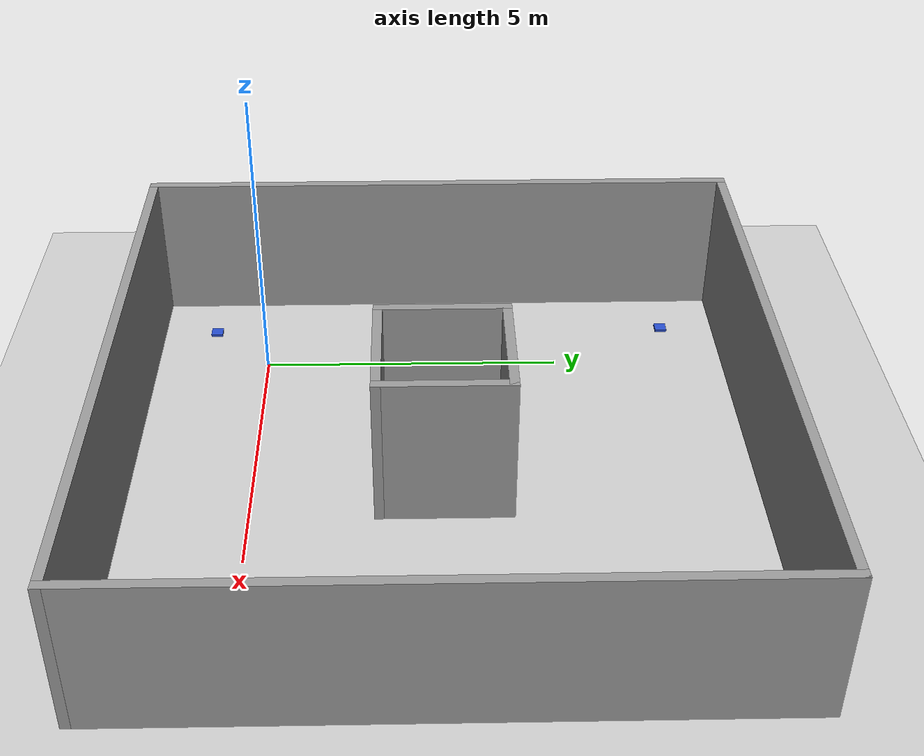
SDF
<sdf version="1.6">
 <world name="default">
  <light name="sun" type="directional">
   <pose>0 0 10 0 -0 0</pose>
   <diffuse>0.8 0.8 0.8 1</diffuse>
   <specular>0.2 0.2 0.2 1</specular>
   <attenuation>
    <range>1000</range>
    <constant>0.9</constant>
    <linear>0.01</linear>
    <quadratic>0.001</quadratic>
   </attenuation>
   <direction>-0.5 0.1 -0.9</direction>
  </light>
  <model name="ground_plane">
   <static>1</static>
   <link name="link">
    <collision name="collision">
     <geometry><plane><normal>0 0 1</normal><size>100 100</size></plane></geometry>
     <surface>
      <contact><collide_bitmask>65535</collide_bitmask></contact>
      <friction><ode><mu>100</mu><mu2>50</mu2></ode></friction>
     </surface>
    </collision>
    <visual name="visual">
     <cast_shadows>0</cast_shadows>
     <geometry><plane><normal>0 0 1</normal><size>100 100</size></plane></geometry>
     <material>
      <script><uri>file://media/materials/scripts/gazebo.material</uri><name>Gazebo/Grey</name></script>
     </material>
    </visual>
   </link>
  </model>
  <gravity>0 0 -9.8</gravity>
  <magnetic_field>6e-06 2.3e-05 -4.2e-05</magnetic_field>
  <atmosphere type="adiabatic"/>
  <scene><ambient>0.4 0.4 0.4 1</ambient><background>0.7 0.7 0.7 1</background><shadows>1</shadows></scene>
  <spherical_coordinates>
   <surface_model>EARTH_WGS84</surface_model>
   <latitude_deg>0</latitude_deg>
   <longitude_deg>0</longitude_deg>
   <elevation>0</elevation>
   <heading_deg>0</heading_deg>
  </spherical_coordinates>
  <physics name="default_physics" default="0" type="ode">
   <ode>
    <solver>
     <type>quick</type>
     <iters>20</iters>
     <sor>1.3</sor>
     <use_dynamic_moi_rescaling>0</use_dynamic_moi_rescaling>
    </solver>
    <constraints>
     <cfm>0</cfm>
     <erp>0.2</erp>
     <contact_max_correcting_vel>100</contact_max_correcting_vel>
     <contact_surface_layer>0.001</contact_surface_layer>
    </constraints>
   </ode>
   <max_step_size>0.002</max_step_size>
   <real_time_factor>1</real_time_factor>
   <real_time_update_rate>500</real_time_update_rate>
  </physics>
  <audio><device>default</device></audio>
  <model name="router">
   <pose>-1 7 0 0 -0 0</pose>
   <link name="router">
    <collision name="router_Collision">
     <geometry><box><size>0.2 0.2 0.05</size></box></geometry>
     <pose>0 0 0.025 0 -0 0</pose>
    </collision>
    <visual name="router_Visual">
     <pose>0 0 0.025 0 -0 0</pose>
     <geometry><box><size>0.2 0.2 0.05</size></box></geometry>
     <material>
      <script><uri>file://media/materials/scripts/gazebo.material</uri><name>Gazebo/Blue</name></script>
      <ambient>1 1 1 1</ambient>
     </material>
     <meta><layer>0</layer></meta>
    </visual>
   </link>
   <plugin name="router" filename="librouter.so">
    <topicName>router</topicName>
    <updateRate>10.0</updateRate>
    <range>18</range>
   </plugin>
   <static>1</static>
  </model>
  <model name="router_0">
   <pose>-1 -1 0 0 -0 0</pose>
   <link name="router">
    <collision name="router_Collision">
     <geometry><box><size>0.2 0.2 0.05</size></box></geometry>
     <pose>0 0 0.025 0 -0 0</pose>
    </collision>
    <visual name="router_Visual">
     <pose>0 0 0.025 0 -0 0</pose>
     <geometry><box><size>0.2 0.2 0.05</size></box></geometry>
     <material>
      <script><uri>file://media/materials/scripts/gazebo.material</uri><name>Gazebo/Blue</name></script>
      <ambient>1 1 1 1</ambient>
     </material>
     <meta><layer>0</layer></meta>
    </visual>
   </link>
   <plugin name="router" filename="librouter.so">
    <topicName>router</topicName>
    <updateRate>10.0</updateRate>
    <range>18</range>
   </plugin>
   <static>1</static>
  </model>
  <model name="router_1">
   <pose>7 -1 0 0 -0 0</pose>
   <link name="router">
    <collision name="router_Collision">
     <geometry><box><size>0.2 0.2 0.05</size></box></geometry>
     <pose>0 0 0.025 0 -0 0</pose>
    </collision>
    <visual name="router_Visual">
     <pose>0 0 0.025 0 -0 0</pose>
     <geometry><box><size>0.2 0.2 0.05</size></box></geometry>
     <material>
      <script><uri>file://media/materials/scripts/gazebo.material</uri><name>Gazebo/Blue</name></script>
      <ambient>1 1 1 1</ambient>
     </material>
     <meta><layer>0</layer></meta>
    </visual>
   </link>
   <plugin name="router" filename="librouter.so">
    <topicName>router</topicName>
    <updateRate>10.0</updateRate>
    <range>18</range>
   </plugin>
   <static>1</static>
  </model>
  <model name="router_2">
   <pose>7 7 0 0 -0 0</pose>
   <link name="router">
    <collision name="router_Collision">
     <geometry><box><size>0.2 0.2 0.05</size></box></geometry>
     <pose>0 0 0.025 0 -0 0</pose>
    </collision>
    <visual name="router_Visual">
     <pose>0 0 0.025 0 -0 0</pose>
     <geometry><box><size>0.2 0.2 0.05</size></box></geometry>
     <material>
      <script><uri>file://media/materials/scripts/gazebo.material</uri><name>Gazebo/Blue</name></script>
      <ambient>1 1 1 1</ambient>
     </material>
     <meta><layer>0</layer></meta>
    </visual>
   </link>
   <plugin name="router" filename="librouter.so">
    <topicName>router</topicName>
    <updateRate>10.0</updateRate>
    <range>18</range>
   </plugin>
   <static>1</static>
  </model>
  <model name="simple">
   <pose>3 3 0 0 -0 0</pose>
   <link name="Wall_10">
    <collision name="Wall_10_Collision">
     <geometry><box><size>2.15 0.15 2.5</size></box></geometry>
     <pose>0 0 1.25 0 -0 0</pose>
    </collision>
    <visual name="Wall_10_Visual">
     <pose>0 0 1.25 0 -0 0</pose>
     <geometry><box><size>2.15 0.15 2.5</size></box></geometry>
     <material>
      <script><uri>file://media/materials/scripts/gazebo.material</uri><name>Gazebo/Grey</name></script>
      <ambient>1 1 1 1</ambient>
     </material>
     <meta><layer>0</layer></meta>
    </visual>
    <pose>-1 -0 0 0 -0 1.5708</pose>
   </link>
   <link name="Wall_11">
    <collision name="Wall_11_Collision">
     <geometry><box><size>2.15 0.15 2.5</size></box></geometry>
     <pose>0 0 1.25 0 -0 0</pose>
    </collision>
    <visual name="Wall_11_Visual">
     <pose>0 0 1.25 0 -0 0</pose>
     <geometry><box><size>2.15 0.15 2.5</size></box></geometry>
     <material>
      <script><uri>file://media/materials/scripts/gazebo.material</uri><name>Gazebo/Grey</name></script>
      <ambient>1 1 1 1</ambient>
     </material>
     <meta><layer>0</layer></meta>
    </visual>
    <pose>-0 1 0 0 -0 0</pose>
   </link>
   <link name="Wall_12">
    <collision name="Wall_12_Collision">
     <geometry><box><size>2.15 0.15 2.5</size></box></geometry>
     <pose>0 0 1.25 0 -0 0</pose>
    </collision>
    <visual name="Wall_12_Visual">
     <pose>0 0 1.25 0 -0 0</pose>
     <geometry><box><size>2.15 0.15 2.5</size></box></geometry>
     <material>
      <script><uri>file://media/materials/scripts/gazebo.material</uri><name>Gazebo/Grey</name></script>
      <ambient>1 1 1 1</ambient>
     </material>
     <meta><layer>0</layer></meta>
    </visual>
    <pose>1 -0 0 0 -0 -1.5708</pose>
   </link>
   <link name="Wall_13">
    <collision name="Wall_13_Collision">
     <geometry><box><size>2.15 0.15 2.5</size></box></geometry>
     <pose>0 0 1.25 0 -0 0</pose>
    </collision>
    <visual name="Wall_13_Visual">
     <pose>0 0 1.25 0 -0 0</pose>
     <geometry><box><size>2.15 0.15 2.5</size></box></geometry>
     <material>
      <script><uri>file://media/materials/scripts/gazebo.material</uri><name>Gazebo/Grey</name></script>
      <ambient>1 1 1 1</ambient>
     </material>
     <meta><layer>0</layer></meta>
    </visual>
    <pose>-0 -1 0 0 -0 3.14159</pose>
   </link>
   <link name="Wall_5">
    <collision name="Wall_5_Collision">
     <geometry><box><size>10.15 0.15 2.5</size></box></geometry>
     <pose>0 0 1.25 0 -0 0</pose>
    </collision>
    <visual name="Wall_5_Visual">
     <pose>0 0 1.25 0 -0 0</pose>
     <geometry><box><size>10.15 0.15 2.5</size></box></geometry>
     <material>
      <script><uri>file://media/materials/scripts/gazebo.material</uri><name>Gazebo/Grey</name></script>
      <ambient>1 1 1 1</ambient>
     </material>
     <meta><layer>0</layer></meta>
    </visual>
    <pose>-5 -0 0 0 -0 1.5708</pose>
   </link>
   <link name="Wall_6">
    <collision name="Wall_6_Collision">
     <geometry><box><size>10.15 0.15 2.5</size></box></geometry>
     <pose>0 0 1.25 0 -0 0</pose>
    </collision>
    <visual name="Wall_6_Visual">
     <pose>0 0 1.25 0 -0 0</pose>
     <geometry><box><size>10.15 0.15 2.5</size></box></geometry>
     <material>
      <script><uri>file://media/materials/scripts/gazebo.material</uri><name>Gazebo/Grey</name></script>
      <ambient>1 1 1 1</ambient>
     </material>
     <meta><layer>0</layer></meta>
    </visual>
    <pose>-0 5 0 0 -0 0</pose>
   </link>
   <link name="Wall_7">
    <collision name="Wall_7_Collision">
     <geometry><box><size>10.15 0.15 2.5</size></box></geometry>
     <pose>0 0 1.25 0 -0 0</pose>
    </collision>
    <visual name="Wall_7_Visual">
     <pose>0 0 1.25 0 -0 0</pose>
     <geometry><box><size>10.15 0.15 2.5</size></box></geometry>
     <material>
      <script><uri>file://media/materials/scripts/gazebo.material</uri><name>Gazebo/Grey</name></script>
      <ambient>1 1 1 1</ambient>
     </material>
     <meta><layer>0</layer></meta>
    </visual>
    <pose>5 -0 0 0 -0 -1.5708</pose>
   </link>
   <link name="Wall_8">
    <collision name="Wall_8_Collision">
     <geometry><box><size>10.15 0.15 2.5</size></box></geometry>
     <pose>0 0 1.25 0 -0 0</pose>
    </collision>
    <visual name="Wall_8_Visual">
     <pose>0 0 1.25 0 -0 0</pose>
     <geometry><box><size>10.15 0.15 2.5</size></box></geometry>
     <material>
      <script><uri>file://media/materials/scripts/gazebo.material</uri><name>Gazebo/Grey</name></script>
      <ambient>1 1 1 1</ambient>
     </material>
     <meta><layer>0</layer></meta>
    </visual>
    <pose>-0 -5 0 0 -0 3.14159</pose>
   </link>
   <static>1</static>
  </model>
 </world>
</sdf>
